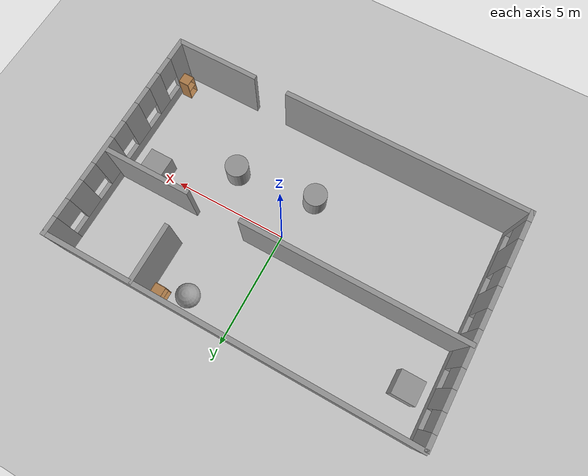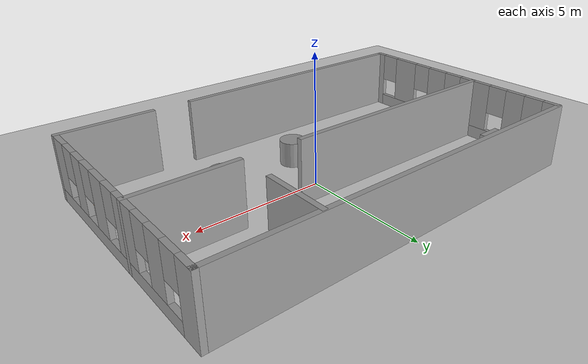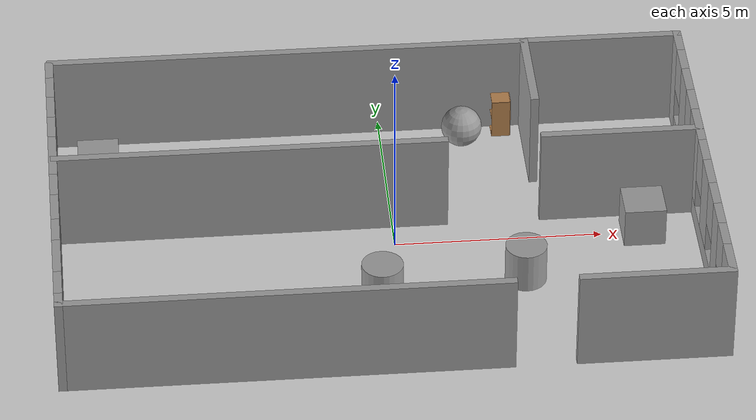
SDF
<sdf version="1.4">
 <world name="default">
  <light name="sun" type="directional">
   <pose>0.000000 0.000000 10.000000 0.000000 0.000000 0.000000</pose>
   <diffuse>0.800000 0.800000 0.800000 1.000000</diffuse>
   <specular>0.200000 0.200000 0.200000 1.000000</specular>
   <attenuation>
    <range>1000.000000</range>
    <constant>0.900000</constant>
    <linear>0.010000</linear>
    <quadratic>0.001000</quadratic>
   </attenuation>
   <direction>0.500000 0.100000 -0.900000</direction>
  </light>
  <model name="ground_plane">
   <static>1</static>
   <link name="link">
    <collision name="collision">
     <geometry>
      <plane><normal>0.000000 0.000000 1.000000</normal><size>100.000000 100.000000</size></plane>
     </geometry>
     <surface><friction><ode><mu>100.000000</mu><mu2>50.000000</mu2></ode></friction></surface>
    </collision>
    <visual name="visual">
     <cast_shadows>0</cast_shadows>
     <geometry>
      <plane><normal>0.000000 0.000000 1.000000</normal><size>100.000000 100.000000</size></plane>
     </geometry>
     <material>
      <script><uri>file://media/materials/scripts/gazebo.material</uri><name>Gazebo/Grey</name></script>
     </material>
    </visual>
    <velocity_decay><linear>0.000000</linear><angular>0.000000</angular></velocity_decay>
   </link>
  </model>
  <physics type="ode">
   <max_step_size>0.001000</max_step_size>
   <real_time_factor>1.000000</real_time_factor>
   <real_time_update_rate>1000.000000</real_time_update_rate>
   <gravity>0.000000 0.000000 -9.800000</gravity>
   <max_contacts>20</max_contacts>
  </physics>
  <scene>
   <ambient>0.400000 0.400000 0.400000 1.000000</ambient>
   <background>0.700000 0.700000 0.700000 1.000000</background>
   <shadows>1</shadows>
  </scene>
  <model name="RoboIME">
   <link name="Wall_88">
    <collision name="Wall_88_Collision">
     <geometry><box><size>15.654000 0.200000 2.500000</size></box></geometry>
     <pose>0.000000 0.000000 1.250000 0.000000 0.000000 0.000000</pose>
    </collision>
    <visual name="Wall_88_Visual">
     <pose>0.000000 0.000000 1.250000 0.000000 0.000000 0.000000</pose>
     <geometry><box><size>15.654000 0.200000 2.500000</size></box></geometry>
     <material>
      <script><uri>file://media/materials/scripts/gazebo.material</uri><name>Gazebo/Grey</name></script>
     </material>
    </visual>
    <velocity_decay><linear>0.000000</linear><angular>0.000000</angular></velocity_decay>
    <pose>0.670068 1.716220 0.000000 0.000000 0.000000 0.000000</pose>
   </link>
   <link name="Wall_89">
    <pose>8.397080 -3.017080 0.000000 0.000000 0.000000 -1.570800</pose>
    <visual name="Wall_89_Visual_0">
     <pose>-4.426560 0.000000 1.250000 0.000000 0.000000 0.000000</pose>
     <geometry><box><size>0.813495 0.200000 2.500000</size></box></geometry>
     <material>
      <script><uri>file://media/materials/scripts/gazebo.material</uri><name>Gazebo/Grey</name></script>
     </material>
    </visual>
    <collision name="Wall_89_Collision_0">
     <geometry><box><size>0.813495 0.200000 2.500000</size></box></geometry>
     <pose>-4.426560 0.000000 1.250000 0.000000 0.000000 0.000000</pose>
    </collision>
    <visual name="Wall_89_Visual_1">
     <pose>0.406747 0.000000 0.250000 0.000000 0.000000 0.000000</pose>
     <geometry><box><size>8.853120 0.200000 0.500000</size></box></geometry>
     <material>
      <script><uri>file://media/materials/scripts/gazebo.material</uri><name>Gazebo/Grey</name></script>
     </material>
    </visual>
    <collision name="Wall_89_Collision_1">
     <geometry><box><size>8.853120 0.200000 0.500000</size></box></geometry>
     <pose>0.406747 0.000000 0.250000 0.000000 0.000000 0.000000</pose>
    </collision>
    <visual name="Wall_89_Visual_2">
     <pose>-2.778580 0.000000 1.500000 0.000000 0.000000 0.000000</pose>
     <geometry><box><size>0.882463 0.200000 2.000000</size></box></geometry>
     <material>
      <script><uri>file://media/materials/scripts/gazebo.material</uri><name>Gazebo/Grey</name></script>
     </material>
    </visual>
    <collision name="Wall_89_Collision_2">
     <geometry><box><size>0.882463 0.200000 2.000000</size></box></geometry>
     <pose>-2.778580 0.000000 1.500000 0.000000 0.000000 0.000000</pose>
    </collision>
    <visual name="Wall_89_Visual_3">
     <pose>-0.912575 0.000000 1.500000 0.000000 0.000000 0.000000</pose>
     <geometry><box><size>1.249540 0.200000 2.000000</size></box></geometry>
     <material>
      <script><uri>file://media/materials/scripts/gazebo.material</uri><name>Gazebo/Grey</name></script>
     </material>
    </visual>
    <collision name="Wall_89_Collision_3">
     <geometry><box><size>1.249540 0.200000 2.000000</size></box></geometry>
     <pose>-0.912575 0.000000 1.500000 0.000000 0.000000 0.000000</pose>
    </collision>
    <visual name="Wall_89_Visual_4">
     <pose>0.968724 0.000000 1.500000 0.000000 0.000000 0.000000</pose>
     <geometry><box><size>0.913053 0.200000 2.000000</size></box></geometry>
     <material>
      <script><uri>file://media/materials/scripts/gazebo.material</uri><name>Gazebo/Grey</name></script>
     </material>
    </visual>
    <collision name="Wall_89_Collision_4">
     <geometry><box><size>0.913053 0.200000 2.000000</size></box></geometry>
     <pose>0.968724 0.000000 1.500000 0.000000 0.000000 0.000000</pose>
    </collision>
    <visual name="Wall_89_Visual_5">
     <pose>2.605300 0.000000 1.500000 0.000000 0.000000 0.000000</pose>
     <geometry><box><size>0.760102 0.200000 2.000000</size></box></geometry>
     <material>
      <script><uri>file://media/materials/scripts/gazebo.material</uri><name>Gazebo/Grey</name></script>
     </material>
    </visual>
    <collision name="Wall_89_Collision_5">
     <geometry><box><size>0.760102 0.200000 2.000000</size></box></geometry>
     <pose>2.605300 0.000000 1.500000 0.000000 0.000000 0.000000</pose>
    </collision>
    <visual name="Wall_89_Visual_6">
     <pose>4.309330 0.000000 1.500000 0.000000 0.000000 0.000000</pose>
     <geometry><box><size>1.047950 0.200000 2.000000</size></box></geometry>
     <material>
      <script><uri>file://media/materials/scripts/gazebo.material</uri><name>Gazebo/Grey</name></script>
     </material>
    </visual>
    <collision name="Wall_89_Collision_6">
     <geometry><box><size>1.047950 0.200000 2.000000</size></box></geometry>
     <pose>4.309330 0.000000 1.500000 0.000000 0.000000 0.000000</pose>
    </collision>
    <visual name="Wall_89_Visual_7">
     <pose>-3.619810 0.000000 1.900000 0.000000 0.000000 0.000000</pose>
     <geometry><box><size>0.800000 0.200000 1.200000</size></box></geometry>
     <material>
      <script><uri>file://media/materials/scripts/gazebo.material</uri><name>Gazebo/Grey</name></script>
     </material>
    </visual>
    <collision name="Wall_89_Collision_7">
     <geometry><box><size>0.800000 0.200000 1.200000</size></box></geometry>
     <pose>-3.619810 0.000000 1.900000 0.000000 0.000000 0.000000</pose>
    </collision>
    <visual name="Wall_89_Visual_8">
     <pose>-1.937350 0.000000 1.900000 0.000000 0.000000 0.000000</pose>
     <geometry><box><size>0.800000 0.200000 1.200000</size></box></geometry>
     <material>
      <script><uri>file://media/materials/scripts/gazebo.material</uri><name>Gazebo/Grey</name></script>
     </material>
    </visual>
    <collision name="Wall_89_Collision_8">
     <geometry><box><size>0.800000 0.200000 1.200000</size></box></geometry>
     <pose>-1.937350 0.000000 1.900000 0.000000 0.000000 0.000000</pose>
    </collision>
    <visual name="Wall_89_Visual_9">
     <pose>0.112198 0.000000 1.900000 0.000000 0.000000 0.000000</pose>
     <geometry><box><size>0.800000 0.200000 1.200000</size></box></geometry>
     <material>
      <script><uri>file://media/materials/scripts/gazebo.material</uri><name>Gazebo/Grey</name></script>
     </material>
    </visual>
    <collision name="Wall_89_Collision_9">
     <geometry><box><size>0.800000 0.200000 1.200000</size></box></geometry>
     <pose>0.112198 0.000000 1.900000 0.000000 0.000000 0.000000</pose>
    </collision>
    <visual name="Wall_89_Visual_10">
     <pose>1.825250 0.000000 1.900000 0.000000 0.000000 0.000000</pose>
     <geometry><box><size>0.800000 0.200000 1.200000</size></box></geometry>
     <material>
      <script><uri>file://media/materials/scripts/gazebo.material</uri><name>Gazebo/Grey</name></script>
     </material>
    </visual>
    <collision name="Wall_89_Collision_10">
     <geometry><box><size>0.800000 0.200000 1.200000</size></box></geometry>
     <pose>1.825250 0.000000 1.900000 0.000000 0.000000 0.000000</pose>
    </collision>
    <visual name="Wall_89_Visual_11">
     <pose>3.385350 0.000000 1.900000 0.000000 0.000000 0.000000</pose>
     <geometry><box><size>0.800000 0.200000 1.200000</size></box></geometry>
     <material>
      <script><uri>file://media/materials/scripts/gazebo.material</uri><name>Gazebo/Grey</name></script>
     </material>
    </visual>
    <collision name="Wall_89_Collision_11">
     <geometry><box><size>0.800000 0.200000 1.200000</size></box></geometry>
     <pose>3.385350 0.000000 1.900000 0.000000 0.000000 0.000000</pose>
    </collision>
    <velocity_decay><linear>0.000000</linear><angular>0.000000</angular></velocity_decay>
   </link>
   <link name="Wall_90">
    <collision name="Wall_90_Collision">
     <geometry><box><size>3.657100 0.200000 2.500000</size></box></geometry>
     <pose>0.000000 0.000000 1.250000 0.000000 0.000000 0.000000</pose>
    </collision>
    <visual name="Wall_90_Visual">
     <pose>0.000000 0.000000 1.250000 0.000000 0.000000 0.000000</pose>
     <geometry><box><size>3.657100 0.200000 2.500000</size></box></geometry>
     <material>
      <script><uri>file://media/materials/scripts/gazebo.material</uri><name>Gazebo/Grey</name></script>
     </material>
    </visual>
    <velocity_decay><linear>0.000000</linear><angular>0.000000</angular></velocity_decay>
    <pose>6.668530 -7.750390 0.000000 0.000000 0.000000 3.141590</pose>
   </link>
   <link name="Wall_92">
    <collision name="Wall_92_Collision">
     <geometry><box><size>10.609100 0.200000 2.500000</size></box></geometry>
     <pose>0.000000 0.000000 1.250000 0.000000 0.000000 0.000000</pose>
    </collision>
    <visual name="Wall_92_Visual">
     <pose>0.000000 0.000000 1.250000 0.000000 0.000000 0.000000</pose>
     <geometry><box><size>10.609100 0.200000 2.500000</size></box></geometry>
     <material>
      <script><uri>file://media/materials/scripts/gazebo.material</uri><name>Gazebo/Grey</name></script>
     </material>
    </visual>
    <velocity_decay><linear>0.000000</linear><angular>0.000000</angular></velocity_decay>
    <pose>-1.892840 -7.750390 0.000000 0.000000 0.000000 3.141590</pose>
   </link>
   <link name="Wall_93">
    <pose>-7.097400 -3.057490 0.000000 0.000000 0.000000 1.570800</pose>
    <visual name="Wall_93_Visual_0">
     <pose>-4.544240 0.000000 1.250000 0.000000 0.000000 0.000000</pose>
     <geometry><box><size>0.497327 0.200000 2.500000</size></box></geometry>
     <material>
      <script><uri>file://media/materials/scripts/gazebo.material</uri><name>Gazebo/Grey</name></script>
     </material>
    </visual>
    <collision name="Wall_93_Collision_0">
     <geometry><box><size>0.497327 0.200000 2.500000</size></box></geometry>
     <pose>-4.544240 0.000000 1.250000 0.000000 0.000000 0.000000</pose>
    </collision>
    <visual name="Wall_93_Visual_1">
     <pose>0.248663 0.000000 0.250000 0.000000 0.000000 0.000000</pose>
     <geometry><box><size>9.088470 0.200000 0.500000</size></box></geometry>
     <material>
      <script><uri>file://media/materials/scripts/gazebo.material</uri><name>Gazebo/Grey</name></script>
     </material>
    </visual>
    <collision name="Wall_93_Collision_1">
     <geometry><box><size>9.088470 0.200000 0.500000</size></box></geometry>
     <pose>0.248663 0.000000 0.250000 0.000000 0.000000 0.000000</pose>
    </collision>
    <visual name="Wall_93_Visual_2">
     <pose>-2.901390 0.000000 1.500000 0.000000 0.000000 0.000000</pose>
     <geometry><box><size>1.188360 0.200000 2.000000</size></box></geometry>
     <material>
      <script><uri>file://media/materials/scripts/gazebo.material</uri><name>Gazebo/Grey</name></script>
     </material>
    </visual>
    <collision name="Wall_93_Collision_2">
     <geometry><box><size>1.188360 0.200000 2.000000</size></box></geometry>
     <pose>-2.901390 0.000000 1.500000 0.000000 0.000000 0.000000</pose>
    </collision>
    <visual name="Wall_93_Visual_3">
     <pose>-1.035390 0.000000 1.500000 0.000000 0.000000 0.000000</pose>
     <geometry><box><size>0.943643 0.200000 2.000000</size></box></geometry>
     <material>
      <script><uri>file://media/materials/scripts/gazebo.material</uri><name>Gazebo/Grey</name></script>
     </material>
    </visual>
    <collision name="Wall_93_Collision_3">
     <geometry><box><size>0.943643 0.200000 2.000000</size></box></geometry>
     <pose>-1.035390 0.000000 1.500000 0.000000 0.000000 0.000000</pose>
    </collision>
    <visual name="Wall_93_Visual_4">
     <pose>0.983797 0.000000 1.500000 0.000000 0.000000 0.000000</pose>
     <geometry><box><size>1.494730 0.200000 2.000000</size></box></geometry>
     <material>
      <script><uri>file://media/materials/scripts/gazebo.material</uri><name>Gazebo/Grey</name></script>
     </material>
    </visual>
    <collision name="Wall_93_Collision_4">
     <geometry><box><size>1.494730 0.200000 2.000000</size></box></geometry>
     <pose>0.983797 0.000000 1.500000 0.000000 0.000000 0.000000</pose>
    </collision>
    <visual name="Wall_93_Visual_5">
     <pose>2.942040 0.000000 1.500000 0.000000 0.000000 0.000000</pose>
     <geometry><box><size>0.821764 0.200000 2.000000</size></box></geometry>
     <material>
      <script><uri>file://media/materials/scripts/gazebo.material</uri><name>Gazebo/Grey</name></script>
     </material>
    </visual>
    <collision name="Wall_93_Collision_5">
     <geometry><box><size>0.821764 0.200000 2.000000</size></box></geometry>
     <pose>2.942040 0.000000 1.500000 0.000000 0.000000 0.000000</pose>
    </collision>
    <visual name="Wall_93_Visual_6">
     <pose>4.472910 0.000000 1.500000 0.000000 0.000000 0.000000</pose>
     <geometry><box><size>0.639977 0.200000 2.000000</size></box></geometry>
     <material>
      <script><uri>file://media/materials/scripts/gazebo.material</uri><name>Gazebo/Grey</name></script>
     </material>
    </visual>
    <collision name="Wall_93_Collision_6">
     <geometry><box><size>0.639977 0.200000 2.000000</size></box></geometry>
     <pose>4.472910 0.000000 1.500000 0.000000 0.000000 0.000000</pose>
    </collision>
    <visual name="Wall_93_Visual_7">
     <pose>-3.895570 0.000000 1.900000 0.000000 0.000000 0.000000</pose>
     <geometry><box><size>0.800000 0.200000 1.200000</size></box></geometry>
     <material>
      <script><uri>file://media/materials/scripts/gazebo.material</uri><name>Gazebo/Grey</name></script>
     </material>
    </visual>
    <collision name="Wall_93_Collision_7">
     <geometry><box><size>0.800000 0.200000 1.200000</size></box></geometry>
     <pose>-3.895570 0.000000 1.900000 0.000000 0.000000 0.000000</pose>
    </collision>
    <visual name="Wall_93_Visual_8">
     <pose>-1.907210 0.000000 1.900000 0.000000 0.000000 0.000000</pose>
     <geometry><box><size>0.800000 0.200000 1.200000</size></box></geometry>
     <material>
      <script><uri>file://media/materials/scripts/gazebo.material</uri><name>Gazebo/Grey</name></script>
     </material>
    </visual>
    <collision name="Wall_93_Collision_8">
     <geometry><box><size>0.800000 0.200000 1.200000</size></box></geometry>
     <pose>-1.907210 0.000000 1.900000 0.000000 0.000000 0.000000</pose>
    </collision>
    <visual name="Wall_93_Visual_9">
     <pose>-0.163566 0.000000 1.900000 0.000000 0.000000 0.000000</pose>
     <geometry><box><size>0.800000 0.200000 1.200000</size></box></geometry>
     <material>
      <script><uri>file://media/materials/scripts/gazebo.material</uri><name>Gazebo/Grey</name></script>
     </material>
    </visual>
    <collision name="Wall_93_Collision_9">
     <geometry><box><size>0.800000 0.200000 1.200000</size></box></geometry>
     <pose>-0.163566 0.000000 1.900000 0.000000 0.000000 0.000000</pose>
    </collision>
    <visual name="Wall_93_Visual_10">
     <pose>2.131160 0.000000 1.900000 0.000000 0.000000 0.000000</pose>
     <geometry><box><size>0.800000 0.200000 1.200000</size></box></geometry>
     <material>
      <script><uri>file://media/materials/scripts/gazebo.material</uri><name>Gazebo/Grey</name></script>
     </material>
    </visual>
    <collision name="Wall_93_Collision_10">
     <geometry><box><size>0.800000 0.200000 1.200000</size></box></geometry>
     <pose>2.131160 0.000000 1.900000 0.000000 0.000000 0.000000</pose>
    </collision>
    <visual name="Wall_93_Visual_11">
     <pose>3.752920 0.000000 1.900000 0.000000 0.000000 0.000000</pose>
     <geometry><box><size>0.800000 0.200000 1.200000</size></box></geometry>
     <material>
      <script><uri>file://media/materials/scripts/gazebo.material</uri><name>Gazebo/Grey</name></script>
     </material>
    </visual>
    <collision name="Wall_93_Collision_11">
     <geometry><box><size>0.800000 0.200000 1.200000</size></box></geometry>
     <pose>3.752920 0.000000 1.900000 0.000000 0.000000 0.000000</pose>
    </collision>
    <velocity_decay><linear>0.000000</linear><angular>0.000000</angular></velocity_decay>
   </link>
   <link name="Wall_95">
    <collision name="Wall_95_Collision">
     <geometry><box><size>3.921910 0.200000 2.500000</size></box></geometry>
     <pose>0.000000 0.000000 1.250000 0.000000 0.000000 0.000000</pose>
    </collision>
    <visual name="Wall_95_Visual">
     <pose>0.000000 0.000000 1.250000 0.000000 0.000000 0.000000</pose>
     <geometry><box><size>3.921910 0.200000 2.500000</size></box></geometry>
     <material>
      <script><uri>file://media/materials/scripts/gazebo.material</uri><name>Gazebo/Grey</name></script>
     </material>
    </visual>
    <velocity_decay><linear>0.000000</linear><angular>0.000000</angular></velocity_decay>
    <pose>6.536130 -2.207970 0.000000 0.000000 0.000000 3.141590</pose>
   </link>
   <link name="Wall_97">
    <collision name="Wall_97_Collision">
     <geometry><box><size>2.547820 0.200000 2.500000</size></box></geometry>
     <pose>0.000000 0.000000 1.250000 0.000000 0.000000 0.000000</pose>
    </collision>
    <visual name="Wall_97_Visual">
     <pose>0.000000 0.000000 1.250000 0.000000 0.000000 0.000000</pose>
     <geometry><box><size>2.547820 0.200000 2.500000</size></box></geometry>
     <material>
      <script><uri>file://media/materials/scripts/gazebo.material</uri><name>Gazebo/Grey</name></script>
     </material>
    </visual>
    <velocity_decay><linear>0.000000</linear><angular>0.000000</angular></velocity_decay>
    <pose>4.594260 0.501854 0.000000 0.000000 0.000000 -1.570800</pose>
   </link>
   <link name="Wall_99">
    <collision name="Wall_99_Collision">
     <geometry><box><size>9.506190 0.200000 2.500000</size></box></geometry>
     <pose>0.000000 0.000000 1.250000 0.000000 0.000000 0.000000</pose>
    </collision>
    <visual name="Wall_99_Visual">
     <pose>0.000000 0.000000 1.250000 0.000000 0.000000 0.000000</pose>
     <geometry><box><size>9.506190 0.200000 2.500000</size></box></geometry>
     <material>
      <script><uri>file://media/materials/scripts/gazebo.material</uri><name>Gazebo/Grey</name></script>
     </material>
    </visual>
    <velocity_decay><linear>0.000000</linear><angular>0.000000</angular></velocity_decay>
    <pose>-2.403850 -2.207970 0.000000 0.000000 0.000000 0.000000</pose>
   </link>
   <static>1</static>
   <pose>-1.000000 3.000000 0.000000 0.000000 0.000000 0.000000</pose>
  </model>
  <model name="cabinet">
   <static>1</static>
   <link name="cabinet_bottom_plate">
    <inertial>
     <pose>0.000000 0.000000 -1.000000 0.000000 0.000000 0.000000</pose>
     <inertia>
      <ixx>2.050000</ixx>
      <ixy>0.000000</ixy>
      <ixz>0.000000</ixz>
      <iyy>2.050000</iyy>
      <iyz>0.000000</iyz>
      <izz>2.050000</izz>
     </inertia>
     <mass>25.000000</mass>
    </inertial>
    <collision name="cabinet_bottom_plate_geom">
     <pose>0.000000 0.000000 0.010000 0.000000 0.000000 0.000000</pose>
     <geometry><box><size>0.450000 0.450000 0.020000</size></box></geometry>
    </collision>
    <visual name="cabinet_bottom_plate_geom_visual">
     <pose>0.000000 0.000000 0.010000 0.000000 0.000000 0.000000</pose>
     <geometry><box><size>0.450000 0.450000 0.020000</size></box></geometry>
     <material>
      <script><uri>file://media/materials/scripts/gazebo.material</uri><name>Gazebo/Wood</name></script>
     </material>
    </visual>
    <collision name="cabinet_bottom_plate_geom_cabinet_back_plate">
     <pose>0.235000 0.000000 0.510000 0.000000 0.000000 0.000000</pose>
     <geometry><box><size>0.020000 0.450000 1.020000</size></box></geometry>
    </collision>
    <visual name="cabinet_bottom_plate_geom_cabinet_back_plate_visual">
     <pose>0.235000 0.000000 0.510000 0.000000 0.000000 0.000000</pose>
     <geometry><box><size>0.020000 0.450000 1.020000</size></box></geometry>
     <material>
      <script><uri>file://media/materials/scripts/gazebo.material</uri><name>Gazebo/Wood</name></script>
     </material>
    </visual>
    <collision name="cabinet_bottom_plate_geom_cabinet_left_plate">
     <pose>0.000000 0.235000 0.510000 0.000000 0.000000 0.000000</pose>
     <geometry><box><size>0.450000 0.020000 1.020000</size></box></geometry>
    </collision>
    <visual name="cabinet_bottom_plate_geom_cabinet_left_plate_visual">
     <pose>0.000000 0.235000 0.510000 0.000000 0.000000 0.000000</pose>
     <geometry><box><size>0.450000 0.020000 1.020000</size></box></geometry>
     <material>
      <script><uri>file://media/materials/scripts/gazebo.material</uri><name>Gazebo/Wood</name></script>
     </material>
    </visual>
    <collision name="cabinet_bottom_plate_geom_cabinet_middle_plate">
     <pose>0.000000 0.000000 0.510000 0.000000 0.000000 0.000000</pose>
     <geometry><box><size>0.450000 0.450000 0.020000</size></box></geometry>
    </collision>
    <visual name="cabinet_bottom_plate_geom_cabinet_middle_plate_visual">
     <pose>0.000000 0.000000 0.510000 0.000000 0.000000 0.000000</pose>
     <geometry><box><size>0.450000 0.450000 0.020000</size></box></geometry>
     <material>
      <script><uri>file://media/materials/scripts/gazebo.material</uri><name>Gazebo/Wood</name></script>
     </material>
    </visual>
    <collision name="cabinet_bottom_plate_geom_cabinet_right_plate">
     <pose>0.000000 -0.235000 0.510000 0.000000 0.000000 0.000000</pose>
     <geometry><box><size>0.450000 0.020000 1.020000</size></box></geometry>
    </collision>
    <visual name="cabinet_bottom_plate_geom_cabinet_right_plate_visual">
     <pose>0.000000 -0.235000 0.510000 0.000000 0.000000 0.000000</pose>
     <geometry><box><size>0.450000 0.020000 1.020000</size></box></geometry>
     <material>
      <script><uri>file://media/materials/scripts/gazebo.material</uri><name>Gazebo/Wood</name></script>
     </material>
    </visual>
    <collision name="cabinet_bottom_plate_geom_cabinet_top_plate">
     <pose>0.000000 0.000000 1.010000 0.000000 0.000000 0.000000</pose>
     <geometry><box><size>0.450000 0.450000 0.020000</size></box></geometry>
    </collision>
    <visual name="cabinet_bottom_plate_geom_cabinet_top_plate_visual">
     <pose>0.000000 0.000000 1.010000 0.000000 0.000000 0.000000</pose>
     <geometry><box><size>0.450000 0.450000 0.020000</size></box></geometry>
     <material>
      <script><uri>file://media/materials/scripts/gazebo.material</uri><name>Gazebo/Wood</name></script>
     </material>
    </visual>
    <velocity_decay><linear>0.000000</linear><angular>0.000000</angular></velocity_decay>
   </link>
   <pose>7.000000 -4.000000 0.000000 0.000000 0.000000 0.000000</pose>
  </model>
  <model name="cabinet_0">
   <static>1</static>
   <link name="cabinet_bottom_plate">
    <inertial>
     <pose>0.000000 0.000000 -1.000000 0.000000 0.000000 0.000000</pose>
     <inertia>
      <ixx>2.050000</ixx>
      <ixy>0.000000</ixy>
      <ixz>0.000000</ixz>
      <iyy>2.050000</iyy>
      <iyz>0.000000</iyz>
      <izz>2.050000</izz>
     </inertia>
     <mass>25.000000</mass>
    </inertial>
    <collision name="cabinet_bottom_plate_geom">
     <pose>0.000000 0.000000 0.010000 0.000000 0.000000 0.000000</pose>
     <geometry><box><size>0.450000 0.450000 0.020000</size></box></geometry>
    </collision>
    <visual name="cabinet_bottom_plate_geom_visual">
     <pose>0.000000 0.000000 0.010000 0.000000 0.000000 0.000000</pose>
     <geometry><box><size>0.450000 0.450000 0.020000</size></box></geometry>
     <material>
      <script><uri>file://media/materials/scripts/gazebo.material</uri><name>Gazebo/Wood</name></script>
     </material>
    </visual>
    <collision name="cabinet_bottom_plate_geom_cabinet_back_plate">
     <pose>0.235000 0.000000 0.510000 0.000000 0.000000 0.000000</pose>
     <geometry><box><size>0.020000 0.450000 1.020000</size></box></geometry>
    </collision>
    <visual name="cabinet_bottom_plate_geom_cabinet_back_plate_visual">
     <pose>0.235000 0.000000 0.510000 0.000000 0.000000 0.000000</pose>
     <geometry><box><size>0.020000 0.450000 1.020000</size></box></geometry>
     <material>
      <script><uri>file://media/materials/scripts/gazebo.material</uri><name>Gazebo/Wood</name></script>
     </material>
    </visual>
    <collision name="cabinet_bottom_plate_geom_cabinet_left_plate">
     <pose>0.000000 0.235000 0.510000 0.000000 0.000000 0.000000</pose>
     <geometry><box><size>0.450000 0.020000 1.020000</size></box></geometry>
    </collision>
    <visual name="cabinet_bottom_plate_geom_cabinet_left_plate_visual">
     <pose>0.000000 0.235000 0.510000 0.000000 0.000000 0.000000</pose>
     <geometry><box><size>0.450000 0.020000 1.020000</size></box></geometry>
     <material>
      <script><uri>file://media/materials/scripts/gazebo.material</uri><name>Gazebo/Wood</name></script>
     </material>
    </visual>
    <collision name="cabinet_bottom_plate_geom_cabinet_middle_plate">
     <pose>0.000000 0.000000 0.510000 0.000000 0.000000 0.000000</pose>
     <geometry><box><size>0.450000 0.450000 0.020000</size></box></geometry>
    </collision>
    <visual name="cabinet_bottom_plate_geom_cabinet_middle_plate_visual">
     <pose>0.000000 0.000000 0.510000 0.000000 0.000000 0.000000</pose>
     <geometry><box><size>0.450000 0.450000 0.020000</size></box></geometry>
     <material>
      <script><uri>file://media/materials/scripts/gazebo.material</uri><name>Gazebo/Wood</name></script>
     </material>
    </visual>
    <collision name="cabinet_bottom_plate_geom_cabinet_right_plate">
     <pose>0.000000 -0.235000 0.510000 0.000000 0.000000 0.000000</pose>
     <geometry><box><size>0.450000 0.020000 1.020000</size></box></geometry>
    </collision>
    <visual name="cabinet_bottom_plate_geom_cabinet_right_plate_visual">
     <pose>0.000000 -0.235000 0.510000 0.000000 0.000000 0.000000</pose>
     <geometry><box><size>0.450000 0.020000 1.020000</size></box></geometry>
     <material>
      <script><uri>file://media/materials/scripts/gazebo.material</uri><name>Gazebo/Wood</name></script>
     </material>
    </visual>
    <collision name="cabinet_bottom_plate_geom_cabinet_top_plate">
     <pose>0.000000 0.000000 1.010000 0.000000 0.000000 0.000000</pose>
     <geometry><box><size>0.450000 0.450000 0.020000</size></box></geometry>
    </collision>
    <visual name="cabinet_bottom_plate_geom_cabinet_top_plate_visual">
     <pose>0.000000 0.000000 1.010000 0.000000 0.000000 0.000000</pose>
     <geometry><box><size>0.450000 0.450000 0.020000</size></box></geometry>
     <material>
      <script><uri>file://media/materials/scripts/gazebo.material</uri><name>Gazebo/Wood</name></script>
     </material>
    </visual>
    <velocity_decay><linear>0.000000</linear><angular>0.000000</angular></velocity_decay>
   </link>
   <pose>3.000000 4.426190 0.000000 0.000000 0.000000 0.000000</pose>
  </model>
  <model name="unit_sphere_1">
   <pose>2.000000 4.000000 0.500000 0.000000 0.000000 0.000000</pose>
   <link name="link">
    <inertial>
     <mass>1.000000</mass>
     <inertia>
      <ixx>1.000000</ixx>
      <ixy>0.000000</ixy>
      <ixz>0.000000</ixz>
      <iyy>1.000000</iyy>
      <iyz>0.000000</iyz>
      <izz>1.000000</izz>
     </inertia>
    </inertial>
    <collision name="collision"><geometry><sphere><radius>0.500000</radius></sphere></geometry></collision>
    <visual name="visual">
     <geometry><sphere><radius>0.500000</radius></sphere></geometry>
     <material>
      <script><uri>file://media/materials/scripts/gazebo.material</uri><name>Gazebo/Grey</name></script>
     </material>
    </visual>
    <velocity_decay><linear>0.000000</linear><angular>0.000000</angular></velocity_decay>
   </link>
   <static>0</static>
  </model>
  <model name="unit_cylinder_1">
   <pose>3.000000 -1.551090 0.500000 0.000000 0.000000 0.000000</pose>
   <link name="link">
    <inertial>
     <mass>1.000000</mass>
     <inertia>
      <ixx>1.000000</ixx>
      <ixy>0.000000</ixy>
      <ixz>0.000000</ixz>
      <iyy>1.000000</iyy>
      <iyz>0.000000</iyz>
      <izz>1.000000</izz>
     </inertia>
    </inertial>
    <collision name="collision">
     <geometry><cylinder><radius>0.500000</radius><length>1.000000</length></cylinder></geometry>
    </collision>
    <visual name="visual">
     <geometry><cylinder><radius>0.500000</radius><length>1.000000</length></cylinder></geometry>
     <material>
      <script><uri>file://media/materials/scripts/gazebo.material</uri><name>Gazebo/Grey</name></script>
     </material>
    </visual>
    <velocity_decay><linear>0.000000</linear><angular>0.000000</angular></velocity_decay>
   </link>
   <static>0</static>
  </model>
  <model name="unit_cylinder_2">
   <pose>-0.462459 -2.000000 0.500000 0.000000 0.000000 0.000000</pose>
   <link name="link">
    <inertial>
     <mass>1.000000</mass>
     <inertia>
      <ixx>1.000000</ixx>
      <ixy>0.000000</ixy>
      <ixz>0.000000</ixz>
      <iyy>1.000000</iyy>
      <iyz>0.000000</iyz>
      <izz>1.000000</izz>
     </inertia>
    </inertial>
    <collision name="collision">
     <geometry><cylinder><radius>0.500000</radius><length>1.000000</length></cylinder></geometry>
    </collision>
    <visual name="visual">
     <geometry><cylinder><radius>0.500000</radius><length>1.000000</length></cylinder></geometry>
     <material>
      <script><uri>file://media/materials/scripts/gazebo.material</uri><name>Gazebo/Grey</name></script>
     </material>
    </visual>
    <velocity_decay><linear>0.000000</linear><angular>0.000000</angular></velocity_decay>
   </link>
   <static>0</static>
  </model>
  <model name="unit_box_1">
   <pose>-7.000000 3.000000 0.500000 0.000000 0.000000 0.000000</pose>
   <link name="link">
    <inertial>
     <mass>1.000000</mass>
     <inertia>
      <ixx>1.000000</ixx>
      <ixy>0.000000</ixy>
      <ixz>0.000000</ixz>
      <iyy>1.000000</iyy>
      <iyz>0.000000</iyz>
      <izz>1.000000</izz>
     </inertia>
    </inertial>
    <collision name="collision">
     <geometry><box><size>1.000000 1.000000 1.000000</size></box></geometry>
    </collision>
    <visual name="visual">
     <geometry><box><size>1.000000 1.000000 1.000000</size></box></geometry>
     <material>
      <script><uri>file://media/materials/scripts/gazebo.material</uri><name>Gazebo/Grey</name></script>
     </material>
    </visual>
    <velocity_decay><linear>0.000000</linear><angular>0.000000</angular></velocity_decay>
   </link>
   <static>0</static>
  </model>
  <model name="unit_box_3">
   <pose>6.000000 0.000000 0.500000 0.000000 0.000000 0.000000</pose>
   <link name="link">
    <inertial>
     <mass>1.000000</mass>
     <inertia>
      <ixx>1.000000</ixx>
      <ixy>0.000000</ixy>
      <ixz>0.000000</ixz>
      <iyy>1.000000</iyy>
      <iyz>0.000000</iyz>
      <izz>1.000000</izz>
     </inertia>
    </inertial>
    <collision name="collision">
     <geometry><box><size>1.000000 1.000000 1.000000</size></box></geometry>
    </collision>
    <visual name="visual">
     <geometry><box><size>1.000000 1.000000 1.000000</size></box></geometry>
     <material>
      <script><uri>file://media/materials/scripts/gazebo.material</uri><name>Gazebo/Grey</name></script>
     </material>
    </visual>
    <velocity_decay><linear>0.000000</linear><angular>0.000000</angular></velocity_decay>
   </link>
   <static>0</static>
  </model>
 </world>
</sdf>
